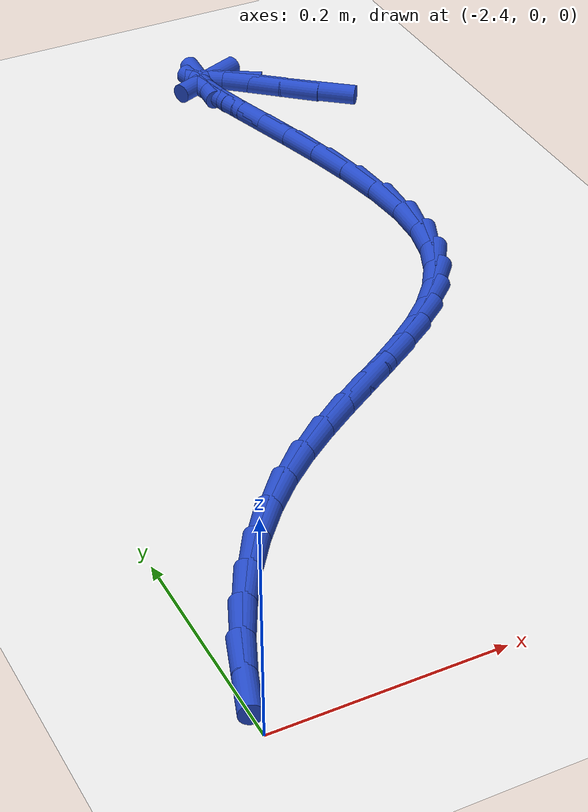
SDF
<sdf version="1.6">
 <world name="default">
  <model name="ground_plane">
   <static>1</static>
   <link name="link">
    <collision name="collision">
     <geometry><plane><normal>0 0 1</normal><size>100 100</size></plane></geometry>
     <surface><friction><ode><mu>100</mu><mu2>50</mu2></ode></friction></surface>
    </collision>
    <visual name="visual">
     <cast_shadows>0</cast_shadows>
     <geometry><plane><normal>0 0 1</normal><size>100 100</size></plane></geometry>
     <material>
      <script><uri>file://media/materials/scripts/gazebo.material</uri><name>Gazebo/WhiteGlow</name></script>
     </material>
    </visual>
   </link>
  </model>
  <model name="line">
   <link name="link_102">
    <pose>-1.953578076743729 0.7929921114465803 0.01 0 1.57 -0.6846360457884297</pose>
    <collision name="collision">
     <geometry><cylinder><radius>0.01</radius><length>0.08</length></cylinder></geometry>
    </collision>
    <visual name="visual">
     <material>
      <script><name>Gazebo/Blue</name><uri>file://media/materials/scripts/gazebo.material</uri></script>
     </material>
     <geometry><cylinder><radius>0.01</radius><length>0.08</length></cylinder></geometry>
    </visual>
   </link>
   <link name="link_103">
    <pose>-1.9831465572911735 0.8171305769409161 0.01 0 1.57 -0.7263790970985906</pose>
    <collision name="collision">
     <geometry><cylinder><radius>0.01</radius><length>0.08</length></cylinder></geometry>
    </collision>
    <visual name="visual">
     <material>
      <script><name>Gazebo/Blue</name><uri>file://media/materials/scripts/gazebo.material</uri></script>
     </material>
     <geometry><cylinder><radius>0.01</radius><length>0.08</length></cylinder></geometry>
    </visual>
   </link>
   <link name="link_104">
    <pose>-2.009530678855277 0.8405706991364619 0.01 0 1.57 -0.7070944249705552</pose>
    <collision name="collision">
     <geometry><cylinder><radius>0.01</radius><length>0.08</length></cylinder></geometry>
    </collision>
    <visual name="visual">
     <material>
      <script><name>Gazebo/Blue</name><uri>file://media/materials/scripts/gazebo.material</uri></script>
     </material>
     <geometry><cylinder><radius>0.01</radius><length>0.08</length></cylinder></geometry>
    </visual>
   </link>
   <link name="link_105">
    <pose>-2.031025690031543 0.8589379508948315 0.01 0 1.57 -0.5397228203456691</pose>
    <collision name="collision">
     <geometry><cylinder><radius>0.01</radius><length>0.08</length></cylinder></geometry>
    </collision>
    <visual name="visual">
     <material>
      <script><name>Gazebo/Blue</name><uri>file://media/materials/scripts/gazebo.material</uri></script>
     </material>
     <geometry><cylinder><radius>0.01</radius><length>0.08</length></cylinder></geometry>
    </visual>
   </link>
   <link name="link_106">
    <pose>-2.0459315868920256 0.8678673718007597 0.01 0 1.57 0.39501137577654194</pose>
    <collision name="collision">
     <geometry><cylinder><radius>0.01</radius><length>0.08</length></cylinder></geometry>
    </collision>
    <visual name="visual">
     <material>
      <script><name>Gazebo/Blue</name><uri>file://media/materials/scripts/gazebo.material</uri></script>
     </material>
     <geometry><cylinder><radius>0.01</radius><length>0.08</length></cylinder></geometry>
    </visual>
   </link>
   <link name="link_107">
    <pose>-2.053417868628743 0.8647461523999094 0.01 0 1.57 1.4914910032209747</pose>
    <collision name="collision">
     <geometry><cylinder><radius>0.01</radius><length>0.08</length></cylinder></geometry>
    </collision>
    <visual name="visual">
     <material>
      <script><name>Gazebo/Blue</name><uri>file://media/materials/scripts/gazebo.material</uri></script>
     </material>
     <geometry><cylinder><radius>0.01</radius><length>0.08</length></cylinder></geometry>
    </visual>
   </link>
   <link name="link_108">
    <pose>-2.0545307107689297 0.8507432065792492 0.01 0 1.57 -1.4014827153367957</pose>
    <collision name="collision">
     <geometry><cylinder><radius>0.01</radius><length>0.08</length></cylinder></geometry>
    </collision>
    <visual name="visual">
     <material>
      <script><name>Gazebo/Blue</name><uri>file://media/materials/scripts/gazebo.material</uri></script>
     </material>
     <geometry><cylinder><radius>0.01</radius><length>0.08</length></cylinder></geometry>
    </visual>
   </link>
   <link name="link_109">
    <pose>-2.0505606861534607 0.8275199375315454 0.01 0 1.57 -1.3237771527422117</pose>
    <collision name="collision">
     <geometry><cylinder><radius>0.01</radius><length>0.08</length></cylinder></geometry>
    </collision>
    <visual name="visual">
     <material>
      <script><name>Gazebo/Blue</name><uri>file://media/materials/scripts/gazebo.material</uri></script>
     </material>
     <geometry><cylinder><radius>0.01</radius><length>0.08</length></cylinder></geometry>
    </visual>
   </link>
   <link name="link_110">
    <pose>-2.0427983676232087 0.796737748449564 0.01 0 1.57 -1.297946346264157</pose>
    <collision name="collision">
     <geometry><cylinder><radius>0.01</radius><length>0.08</length></cylinder></geometry>
    </collision>
    <visual name="visual">
     <material>
      <script><name>Gazebo/Blue</name><uri>file://media/materials/scripts/gazebo.material</uri></script>
     </material>
     <geometry><cylinder><radius>0.01</radius><length>0.08</length></cylinder></geometry>
    </visual>
   </link>
   <link name="link_111">
    <pose>-2.032534328019048 0.7600580425260712 0.01 0 1.57 -1.297362542465026</pose>
    <collision name="collision">
     <geometry><cylinder><radius>0.01</radius><length>0.08</length></cylinder></geometry>
    </collision>
    <visual name="visual">
     <material>
      <script><name>Gazebo/Blue</name><uri>file://media/materials/scripts/gazebo.material</uri></script>
     </material>
     <geometry><cylinder><radius>0.01</radius><length>0.08</length></cylinder></geometry>
    </visual>
   </link>
   <link name="link_112">
    <pose>-2.0210591401818516 0.7191422229538331 0.01 0 1.57 -1.3145290474767954</pose>
    <collision name="collision">
     <geometry><cylinder><radius>0.01</radius><length>0.08</length></cylinder></geometry>
    </collision>
    <visual name="visual">
     <material>
      <script><name>Gazebo/Blue</name><uri>file://media/materials/scripts/gazebo.material</uri></script>
     </material>
     <geometry><cylinder><radius>0.01</radius><length>0.08</length></cylinder></geometry>
    </visual>
   </link>
   <link name="link_113">
    <pose>-2.009663376952494 0.6756516929256167 0.01 0 1.57 -1.3487338635106159</pose>
    <collision name="collision">
     <geometry><cylinder><radius>0.01</radius><length>0.08</length></cylinder></geometry>
    </collision>
    <visual name="visual">
     <material>
      <script><name>Gazebo/Blue</name><uri>file://media/materials/scripts/gazebo.material</uri></script>
     </material>
     <geometry><cylinder><radius>0.01</radius><length>0.08</length></cylinder></geometry>
    </visual>
   </link>
   <link name="link_114">
    <pose>-1.9996376111718486 0.6312478556341866 0.01 0 1.57 -1.4036594147444577</pose>
    <collision name="collision">
     <geometry><cylinder><radius>0.01</radius><length>0.08</length></cylinder></geometry>
    </collision>
    <visual name="visual">
     <material>
      <script><name>Gazebo/Blue</name><uri>file://media/materials/scripts/gazebo.material</uri></script>
     </material>
     <geometry><cylinder><radius>0.01</radius><length>0.08</length></cylinder></geometry>
    </visual>
   </link>
   <link name="link_115">
    <pose>-1.9922724156807898 0.5875921142723097 0.01 0 1.57 -1.4882121397995962</pose>
    <collision name="collision">
     <geometry><cylinder><radius>0.01</radius><length>0.08</length></cylinder></geometry>
    </collision>
    <visual name="visual">
     <material>
      <script><name>Gazebo/Blue</name><uri>file://media/materials/scripts/gazebo.material</uri></script>
     </material>
     <geometry><cylinder><radius>0.01</radius><length>0.08</length></cylinder></geometry>
    </visual>
   </link>
   <link name="link_116">
    <pose>-1.9888583633201897 0.5463458720327521 0.01 0 1.57 1.5234175394759488</pose>
    <collision name="collision">
     <geometry><cylinder><radius>0.01</radius><length>0.08</length></cylinder></geometry>
    </collision>
    <visual name="visual">
     <material>
      <script><name>Gazebo/Blue</name><uri>file://media/materials/scripts/gazebo.material</uri></script>
     </material>
     <geometry><cylinder><radius>0.01</radius><length>0.08</length></cylinder></geometry>
    </visual>
   </link>
   <link name="link_117">
    <pose>-1.9906244939231945 0.5090969469727583 0.01 0 1.57 1.3556137059083868</pose>
    <collision name="collision">
     <geometry><cylinder><radius>0.01</radius><length>0.08</length></cylinder></geometry>
    </collision>
    <visual name="visual">
     <material>
      <script><name>Gazebo/Blue</name><uri>file://media/materials/scripts/gazebo.material</uri></script>
     </material>
     <geometry><cylinder><radius>0.01</radius><length>0.08</length></cylinder></geometry>
    </visual>
   </link>
   <link name="link_118">
    <pose>-1.997805133518003 0.47624361428725037 0.01 0 1.57 1.1780248951908094</pose>
    <collision name="collision">
     <geometry><cylinder><radius>0.01</radius><length>0.08</length></cylinder></geometry>
    </collision>
    <visual name="visual">
     <material>
      <script><name>Gazebo/Blue</name><uri>file://media/materials/scripts/gazebo.material</uri></script>
     </material>
     <geometry><cylinder><radius>0.01</radius><length>0.08</length></cylinder></geometry>
    </visual>
   </link>
   <link name="link_119">
    <pose>-2.009829172009811 0.4472209567569966 0.01 0 1.57 1.0078078178086427</pose>
    <collision name="collision">
     <geometry><cylinder><radius>0.01</radius><length>0.08</length></cylinder></geometry>
    </collision>
    <visual name="visual">
     <material>
      <script><name>Gazebo/Blue</name><uri>file://media/materials/scripts/gazebo.material</uri></script>
     </material>
     <geometry><cylinder><radius>0.01</radius><length>0.08</length></cylinder></geometry>
    </visual>
   </link>
   <link name="link_120">
    <pose>-2.0261023512981176 0.4214363752860093 0.01 0 1.57 0.8598194093578359</pose>
    <collision name="collision">
     <geometry><cylinder><radius>0.01</radius><length>0.08</length></cylinder></geometry>
    </collision>
    <visual name="visual">
     <material>
      <script><name>Gazebo/Blue</name><uri>file://media/materials/scripts/gazebo.material</uri></script>
     </material>
     <geometry><cylinder><radius>0.01</radius><length>0.08</length></cylinder></geometry>
    </visual>
   </link>
   <link name="link_121">
    <pose>-2.0460304132824167 0.3982972707783001 0.01 0 1.57 0.7422607050114918</pose>
    <collision name="collision">
     <geometry><cylinder><radius>0.01</radius><length>0.08</length></cylinder></geometry>
    </collision>
    <visual name="visual">
     <material>
      <script><name>Gazebo/Blue</name><uri>file://media/materials/scripts/gazebo.material</uri></script>
     </material>
     <geometry><cylinder><radius>0.01</radius><length>0.08</length></cylinder></geometry>
    </visual>
   </link>
   <link name="link_122">
    <pose>-2.069019099862208 0.377211044137881 0.01 0 1.57 0.6568087122578566</pose>
    <collision name="collision">
     <geometry><cylinder><radius>0.01</radius><length>0.08</length></cylinder></geometry>
    </collision>
    <visual name="visual">
     <material>
      <script><name>Gazebo/Blue</name><uri>file://media/materials/scripts/gazebo.material</uri></script>
     </material>
     <geometry><cylinder><radius>0.01</radius><length>0.08</length></cylinder></geometry>
    </visual>
   </link>
   <link name="link_123">
    <pose>-2.094474152936987 0.3575850962687644 0.01 0 1.57 0.601562512832598</pose>
    <collision name="collision">
     <geometry><cylinder><radius>0.01</radius><length>0.08</length></cylinder></geometry>
    </collision>
    <visual name="visual">
     <material>
      <script><name>Gazebo/Blue</name><uri>file://media/materials/scripts/gazebo.material</uri></script>
     </material>
     <geometry><cylinder><radius>0.01</radius><length>0.08</length></cylinder></geometry>
    </visual>
   </link>
   <link name="link_124">
    <pose>-2.1218013144062517 0.33882682807496145 0.01 0 1.57 0.5736654164263194</pose>
    <collision name="collision">
     <geometry><cylinder><radius>0.01</radius><length>0.08</length></cylinder></geometry>
    </collision>
    <visual name="visual">
     <material>
      <script><name>Gazebo/Blue</name><uri>file://media/materials/scripts/gazebo.material</uri></script>
     </material>
     <geometry><cylinder><radius>0.01</radius><length>0.08</length></cylinder></geometry>
    </visual>
   </link>
   <link name="link_125">
    <pose>-2.1504063261694992 0.3203436404604844 0.01 0 1.57 0.5706684218264172</pose>
    <collision name="collision">
     <geometry><cylinder><radius>0.01</radius><length>0.08</length></cylinder></geometry>
    </collision>
    <visual name="visual">
     <material>
      <script><name>Gazebo/Blue</name><uri>file://media/materials/scripts/gazebo.material</uri></script>
     </material>
     <geometry><cylinder><radius>0.01</radius><length>0.08</length></cylinder></geometry>
    </visual>
   </link>
   <link name="link_126">
    <pose>-2.179694930126226 0.30154293432934537 0.01 0 1.57 0.5909549980034019</pose>
    <collision name="collision">
     <geometry><cylinder><radius>0.01</radius><length>0.08</length></cylinder></geometry>
    </collision>
    <visual name="visual">
     <material>
      <script><name>Gazebo/Blue</name><uri>file://media/materials/scripts/gazebo.material</uri></script>
     </material>
     <geometry><cylinder><radius>0.01</radius><length>0.08</length></cylinder></geometry>
    </visual>
   </link>
   <link name="link_127">
    <pose>-2.209072868175929 0.281832110585556 0.01 0 1.57 0.6336490637090596</pose>
    <collision name="collision">
     <geometry><cylinder><radius>0.01</radius><length>0.08</length></cylinder></geometry>
    </collision>
    <visual name="visual">
     <material>
      <script><name>Gazebo/Blue</name><uri>file://media/materials/scripts/gazebo.material</uri></script>
     </material>
     <geometry><cylinder><radius>0.01</radius><length>0.08</length></cylinder></geometry>
    </visual>
   </link>
   <link name="link_128">
    <pose>-2.2379458822181046 0.2606185701331285 0.01 0 1.57 0.698212916499729</pose>
    <collision name="collision">
     <geometry><cylinder><radius>0.01</radius><length>0.08</length></cylinder></geometry>
    </collision>
    <visual name="visual">
     <material>
      <script><name>Gazebo/Blue</name><uri>file://media/materials/scripts/gazebo.material</uri></script>
     </material>
     <geometry><cylinder><radius>0.01</radius><length>0.08</length></cylinder></geometry>
    </visual>
   </link>
   <link name="link_129">
    <pose>-2.265719714152252 0.23730971387607463 0.01 0 1.57 0.7813109973920053</pose>
    <collision name="collision">
     <geometry><cylinder><radius>0.01</radius><length>0.08</length></cylinder></geometry>
    </collision>
    <visual name="visual">
     <material>
      <script><name>Gazebo/Blue</name><uri>file://media/materials/scripts/gazebo.material</uri></script>
     </material>
     <geometry><cylinder><radius>0.01</radius><length>0.08</length></cylinder></geometry>
    </visual>
   </link>
   <link name="link_130">
    <pose>-2.2918413551042374 0.21140073190150865 0.01 0 1.57 0.8652295681520085</pose>
    <collision name="collision">
     <geometry><cylinder><radius>0.01</radius><length>0.08</length></cylinder></geometry>
    </collision>
    <visual name="visual">
     <material>
      <script><name>Gazebo/Blue</name><uri>file://media/materials/scripts/gazebo.material</uri></script>
     </material>
     <geometry><cylinder><radius>0.01</radius><length>0.08</length></cylinder></geometry>
    </visual>
   </link>
   <link name="link_131">
    <pose>-2.316041855529892 0.18299136712635983 0.01 0 1.57 0.9439747409076157</pose>
    <collision name="collision">
     <geometry><cylinder><radius>0.01</radius><length>0.08</length></cylinder></geometry>
    </collision>
    <visual name="visual">
     <material>
      <script><name>Gazebo/Blue</name><uri>file://media/materials/scripts/gazebo.material</uri></script>
     </material>
     <geometry><cylinder><radius>0.01</radius><length>0.08</length></cylinder></geometry>
    </visual>
   </link>
   <link name="link_132">
    <pose>-2.3381718759758128 0.15243592414259324 0.01 0 1.57 1.0190250705827142</pose>
    <collision name="collision">
     <geometry><cylinder><radius>0.01</radius><length>0.08</length></cylinder></geometry>
    </collision>
    <visual name="visual">
     <material>
      <script><name>Gazebo/Blue</name><uri>file://media/materials/scripts/gazebo.material</uri></script>
     </material>
     <geometry><cylinder><radius>0.01</radius><length>0.08</length></cylinder></geometry>
    </visual>
   </link>
   <link name="link_133">
    <pose>-2.3580824944131846 0.1200895959312926 0.01 0 1.57 1.0918447261064763</pose>
    <collision name="collision">
     <geometry><cylinder><radius>0.01</radius><length>0.08</length></cylinder></geometry>
    </collision>
    <visual name="visual">
     <material>
      <script><name>Gazebo/Blue</name><uri>file://media/materials/scripts/gazebo.material</uri></script>
     </material>
     <geometry><cylinder><radius>0.01</radius><length>0.08</length></cylinder></geometry>
    </visual>
   </link>
   <link name="link_134">
    <pose>-2.375624788813194 0.08630757547354251 0.01 0 1.57 1.1638714987624434</pose>
    <collision name="collision">
     <geometry><cylinder><radius>0.01</radius><length>0.08</length></cylinder></geometry>
    </collision>
    <visual name="visual">
     <material>
      <script><name>Gazebo/Blue</name><uri>file://media/materials/scripts/gazebo.material</uri></script>
     </material>
     <geometry><cylinder><radius>0.01</radius><length>0.08</length></cylinder></geometry>
    </visual>
   </link>
   <link name="link_135">
    <pose>-2.390649837147027 0.05144505575042571 0.01 0 1.57 1.2365482260260496</pose>
    <collision name="collision">
     <geometry><cylinder><radius>0.01</radius><length>0.08</length></cylinder></geometry>
    </collision>
    <visual name="visual">
     <material>
      <script><name>Gazebo/Blue</name><uri>file://media/materials/scripts/gazebo.material</uri></script>
     </material>
     <geometry><cylinder><radius>0.01</radius><length>0.08</length></cylinder></geometry>
    </visual>
   </link>
  </model>
 </world>
</sdf>
